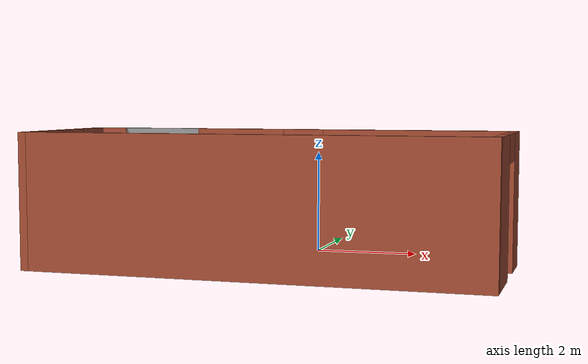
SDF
<?xml version='1.0'?>
<sdf version='1.6'>
  <model name='building'>
    <pose frame=''>-0.175 -2.59 0 0 -0 0</pose>
    <link name='Wall_0'>
      <collision name='Wall_0_Collision'>
        <geometry>
          <box>
            <size>2.25 0.15 2.5</size>
          </box>
        </geometry>
        <pose frame=''>0 0 1.25 0 -0 0</pose>
      </collision>
      <visual name='Wall_0_Visual'>
        <pose frame=''>0 0 1.25 0 -0 0</pose>
        <geometry>
          <box>
            <size>2.25 0.15 2.5</size>
          </box>
        </geometry>
        <material>
          <script>
            <uri>file://media/materials/scripts/gazebo.material</uri>
            <name>Gazebo/Grey</name>
          </script>
          <ambient>1 1 1 1</ambient>
        </material>
        <meta>
          <layer>0</layer>
        </meta>
      </visual>
      <pose frame=''>-3.125 1.55 0 0 -0 3.14159</pose>
    </link>
    <link name='Wall_1'>
      <pose frame=''>0 1.55 0 0 -0 0</pose>
      <visual name='Wall_1_Visual_0'>
        <pose frame=''>-2.2425 0 1.25 0 -0 0</pose>
        <geometry>
          <box>
            <size>4.015 0.15 2.5</size>
          </box>
        </geometry>
        <material>
          <script>
            <uri>file://media/materials/scripts/gazebo.material</uri>
            <name>Gazebo/Bricks</name>
          </script>
          <ambient>0.921569 0.807843 0.615686 1</ambient>
        </material>
        <meta>
          <layer>0</layer>
        </meta>
      </visual>
      <collision name='Wall_1_Collision_0'>
        <geometry>
          <box>
            <size>4.015 0.15 2.5</size>
          </box>
        </geometry>
        <pose frame=''>-2.2425 0 1.25 0 -0 0</pose>
      </collision>
      <visual name='Wall_1_Visual_1'>
        <pose frame=''>2.0075 0 0.25 0 -0 0</pose>
        <geometry>
          <box>
            <size>4.485 0.15 0.5</size>
          </box>
        </geometry>
        <material>
          <script>
            <uri>file://media/materials/scripts/gazebo.material</uri>
            <name>Gazebo/Bricks</name>
          </script>
          <ambient>0.921569 0.807843 0.615686 1</ambient>
        </material>
        <meta>
          <layer>0</layer>
        </meta>
      </visual>
      <collision name='Wall_1_Collision_1'>
        <geometry>
          <box>
            <size>4.485 0.15 0.5</size>
          </box>
        </geometry>
        <pose frame=''>2.0075 0 0.25 0 -0 0</pose>
      </collision>
      <visual name='Wall_1_Visual_2'>
        <pose frame=''>2.4075 0 1.5 0 -0 0</pose>
        <geometry>
          <box>
            <size>3.685 0.15 2</size>
          </box>
        </geometry>
        <material>
          <script>
            <uri>file://media/materials/scripts/gazebo.material</uri>
            <name>Gazebo/Bricks</name>
          </script>
          <ambient>0.921569 0.807843 0.615686 1</ambient>
        </material>
        <meta>
          <layer>0</layer>
        </meta>
      </visual>
      <collision name='Wall_1_Collision_2'>
        <geometry>
          <box>
            <size>3.685 0.15 2</size>
          </box>
        </geometry>
        <pose frame=''>2.4075 0 1.5 0 -0 0</pose>
      </collision>
      <visual name='Wall_1_Visual_3'>
        <pose frame=''>0.165 0 1.9 0 -0 0</pose>
        <geometry>
          <box>
            <size>0.8 0.15 1.2</size>
          </box>
        </geometry>
        <material>
          <script>
            <uri>file://media/materials/scripts/gazebo.material</uri>
            <name>Gazebo/Bricks</name>
          </script>
          <ambient>0.921569 0.807843 0.615686 1</ambient>
        </material>
        <meta>
          <layer>0</layer>
        </meta>
      </visual>
      <collision name='Wall_1_Collision_3'>
        <geometry>
          <box>
            <size>0.8 0.15 1.2</size>
          </box>
        </geometry>
        <pose frame=''>0.165 0 1.9 0 -0 0</pose>
      </collision>
    </link>
    <link name='Wall_2'>
      <pose frame=''>4.175 0 0 0 0 -1.5708</pose>
      <visual name='Wall_2_Visual_0'>
        <pose frame=''>-1.1575 0 1.25 0 -0 0</pose>
        <geometry>
          <box>
            <size>0.935 0.15 2.5</size>
          </box>
        </geometry>
        <material>
          <script>
            <uri>file://media/materials/scripts/gazebo.material</uri>
            <name>Gazebo/Bricks</name>
          </script>
          <ambient>1 1 1 1</ambient>
        </material>
        <meta>
          <layer>0</layer>
        </meta>
      </visual>
      <collision name='Wall_2_Collision_0'>
        <geometry>
          <box>
            <size>0.935 0.15 2.5</size>
          </box>
        </geometry>
        <pose frame=''>-1.1575 0 1.25 0 -0 0</pose>
      </collision>
      <visual name='Wall_2_Visual_1'>
        <pose frame=''>0.9175 0 1.25 0 -0 0</pose>
        <geometry>
          <box>
            <size>1.415 0.15 2.5</size>
          </box>
        </geometry>
        <material>
          <script>
            <uri>file://media/materials/scripts/gazebo.material</uri>
            <name>Gazebo/Bricks</name>
          </script>
          <ambient>1 1 1 1</ambient>
        </material>
        <meta>
          <layer>0</layer>
        </meta>
      </visual>
      <collision name='Wall_2_Collision_1'>
        <geometry>
          <box>
            <size>1.415 0.15 2.5</size>
          </box>
        </geometry>
        <pose frame=''>0.9175 0 1.25 0 -0 0</pose>
      </collision>
      <visual name='Wall_2_Visual_2'>
        <pose frame=''>-0.24 0 2.25 0 -0 0</pose>
        <geometry>
          <box>
            <size>0.9 0.15 0.5</size>
          </box>
        </geometry>
        <material>
          <script>
            <uri>file://media/materials/scripts/gazebo.material</uri>
            <name>Gazebo/Bricks</name>
          </script>
          <ambient>1 1 1 1</ambient>
        </material>
        <meta>
          <layer>0</layer>
        </meta>
      </visual>
      <collision name='Wall_2_Collision_2'>
        <geometry>
          <box>
            <size>0.9 0.15 0.5</size>
          </box>
        </geometry>
        <pose frame=''>-0.24 0 2.25 0 -0 0</pose>
      </collision>
    </link>
    <link name='Wall_3'>
      <collision name='Wall_3_Collision'>
        <geometry>
          <box>
            <size>8.5 0.15 2.5</size>
          </box>
        </geometry>
        <pose frame=''>0 0 1.25 0 -0 0</pose>
      </collision>
      <visual name='Wall_3_Visual'>
        <pose frame=''>0 0 1.25 0 -0 0</pose>
        <geometry>
          <box>
            <size>8.5 0.15 2.5</size>
          </box>
        </geometry>
        <material>
          <script>
            <uri>file://media/materials/scripts/gazebo.material</uri>
            <name>Gazebo/Bricks</name>
          </script>
          <ambient>1 1 1 1</ambient>
        </material>
        <meta>
          <layer>0</layer>
        </meta>
      </visual>
      <pose frame=''>0 -1.55 0 0 -0 3.14159</pose>
    </link>
    <link name='Wall_4'>
      <pose frame=''>-4.175 0 0 0 -0 1.5708</pose>
      <visual name='Wall_4_Visual_0'>
        <pose frame=''>-0.9125 0 1.25 0 -0 0</pose>
        <geometry>
          <box>
            <size>1.425 0.15 2.5</size>
          </box>
        </geometry>
        <material>
          <script>
            <uri>file://media/materials/scripts/gazebo.material</uri>
            <name>Gazebo/Bricks</name>
          </script>
          <ambient>0.921569 0.807843 0.615686 1</ambient>
        </material>
        <meta>
          <layer>0</layer>
        </meta>
      </visual>
      <collision name='Wall_4_Collision_0'>
        <geometry>
          <box>
            <size>1.425 0.15 2.5</size>
          </box>
        </geometry>
        <pose frame=''>-0.9125 0 1.25 0 -0 0</pose>
      </collision>
      <visual name='Wall_4_Visual_1'>
        <pose frame=''>0.7125 0 0.25 0 -0 0</pose>
        <geometry>
          <box>
            <size>1.825 0.15 0.5</size>
          </box>
        </geometry>
        <material>
          <script>
            <uri>file://media/materials/scripts/gazebo.material</uri>
            <name>Gazebo/Bricks</name>
          </script>
          <ambient>0.921569 0.807843 0.615686 1</ambient>
        </material>
        <meta>
          <layer>0</layer>
        </meta>
      </visual>
      <collision name='Wall_4_Collision_1'>
        <geometry>
          <box>
            <size>1.825 0.15 0.5</size>
          </box>
        </geometry>
        <pose frame=''>0.7125 0 0.25 0 -0 0</pose>
      </collision>
      <visual name='Wall_4_Visual_2'>
        <pose frame=''>1.1125 0 1.5 0 -0 0</pose>
        <geometry>
          <box>
            <size>1.025 0.15 2</size>
          </box>
        </geometry>
        <material>
          <script>
            <uri>file://media/materials/scripts/gazebo.material</uri>
            <name>Gazebo/Bricks</name>
          </script>
          <ambient>0.921569 0.807843 0.615686 1</ambient>
        </material>
        <meta>
          <layer>0</layer>
        </meta>
      </visual>
      <collision name='Wall_4_Collision_2'>
        <geometry>
          <box>
            <size>1.025 0.15 2</size>
          </box>
        </geometry>
        <pose frame=''>1.1125 0 1.5 0 -0 0</pose>
      </collision>
      <visual name='Wall_4_Visual_3'>
        <pose frame=''>0.2 0 1.9 0 -0 0</pose>
        <geometry>
          <box>
            <size>0.8 0.15 1.2</size>
          </box>
        </geometry>
        <material>
          <script>
            <uri>file://media/materials/scripts/gazebo.material</uri>
            <name>Gazebo/Bricks</name>
          </script>
          <ambient>0.921569 0.807843 0.615686 1</ambient>
        </material>
        <meta>
          <layer>0</layer>
        </meta>
      </visual>
      <collision name='Wall_4_Collision_3'>
        <geometry>
          <box>
            <size>0.8 0.15 1.2</size>
          </box>
        </geometry>
        <pose frame=''>0.2 0 1.9 0 -0 0</pose>
      </collision>
    </link>
    <static>1</static>
  </model>
</sdf>
